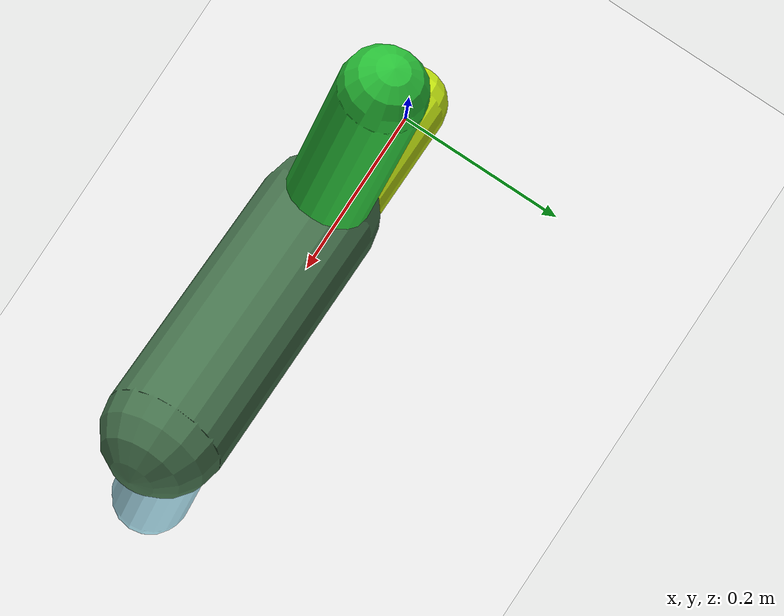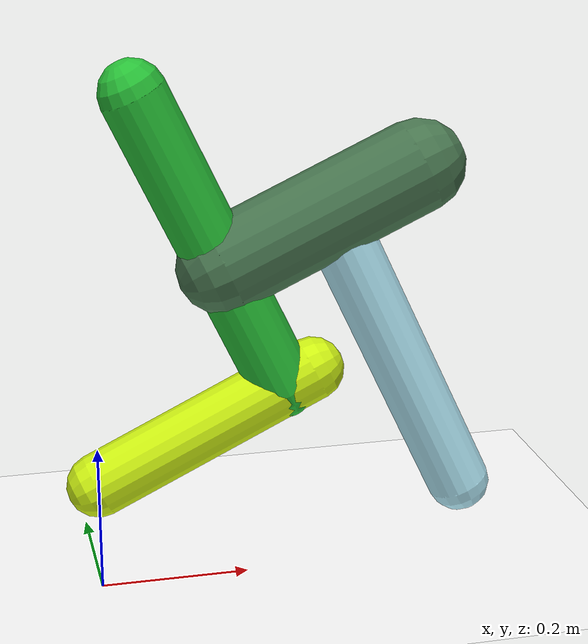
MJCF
<mujoco model="morphology">
  <option timestep="0.01"/>
  <default>
    <default class="/"/>
  </default>
  <asset>
    <texture name="texplane" type="2d" builtin="checker" rgb1="0.1 0.2 0.3" rgb2="0.2 0.3 0.4" width="300" height="300"/>
    <material name="MatPlane" class="/" texture="texplane" texrepeat="20 20" specular="1" shininess="1" reflectance="0.5"/>
  </asset>
  <worldbody>
    <light name="//unnamed_light_0" class="/" directional="true" pos="0 0 1.5" dir="0 0 -1.3" cutoff="1e+02" exponent="1" diffuse="1 1 1" specular="0.1 0.1 0.1"/>
    <geom name="ground" class="/" type="plane" size="15 15 0.5" material="MatPlane" rgba="1 1 1 1"/>
    <body name="body" pos="0 0 0.15">
      <geom name="geom0" class="/" type="capsule" contype="1" conaffinity="1" condim="3" size="0.043" rgba="0.81 0.95 0.071 1" friction="0.4 0.1 0.1" fromto="0 0 0 0.29 0 0.14"/>
      <body name="body1" pos="0.25 0 0.12">
        <geom name="geom1" class="/" type="capsule" contype="1" conaffinity="1" condim="3" size="0.044" rgba="0.16 0.76 0.22 1" friction="0.4 0.1 0.1" fromto="0 0 0 -0.19 0 0.4"/>
        <body name="body2" pos="-0.079 0 0.17">
          <geom name="geom2" class="/" type="capsule" contype="1" conaffinity="1" condim="3" size="0.062" rgba="0.28 0.46 0.31 1" friction="0.4 0.1 0.1" fromto="0 0 0 0.26 0 0.12"/>
          <body name="body3" pos="0.14 0 0.067">
            <geom name="geom3" class="/" type="capsule" contype="1" conaffinity="1" condim="3" size="0.043" rgba="0.71 0.93 0.99 1" friction="0.4 0.1 0.1" fromto="0 0 0 0.19 0 -0.4"/>
            <joint name="joint3" class="/" type="hinge" axis="0 1 0" limited="true" stiffness="20" range="-47 47" armature="0.1" damping="2"/>
          </body>
          <joint name="joint2" class="/" type="hinge" axis="0 1 0" limited="true" stiffness="20" range="-41 41" armature="0.1" damping="2"/>
        </body>
        <joint name="joint1" class="/" type="hinge" axis="0 1 0" limited="true" stiffness="20" range="-40 40" armature="0.1" damping="2"/>
      </body>
      <joint name="rootx" class="/" type="slide" axis="1 0 0" limited="false" stiffness="0" armature="0" damping="0"/>
      <joint name="rootz" class="/" type="slide" axis="0 0 1" limited="false" stiffness="0" armature="0" damping="0"/>
      <joint name="rooty" class="/" type="hinge" axis="0 1 0" limited="false" stiffness="0" armature="0" damping="0"/>
    </body>
  </worldbody>
  <actuator>
    <motor name="motor3" class="/" ctrllimited="true" ctrlrange="-1 1" gear="1.5e+02" joint="joint3"/>
    <motor name="motor2" class="/" ctrllimited="true" ctrlrange="-1 1" gear="1.2e+02" joint="joint2"/>
    <motor name="motor1" class="/" ctrllimited="true" ctrlrange="-1 1" gear="2e+02" joint="joint1"/>
  </actuator>
  <sensor>
    <subtreelinvel name="velocity" body="body"/>
  </sensor>
</mujoco>
